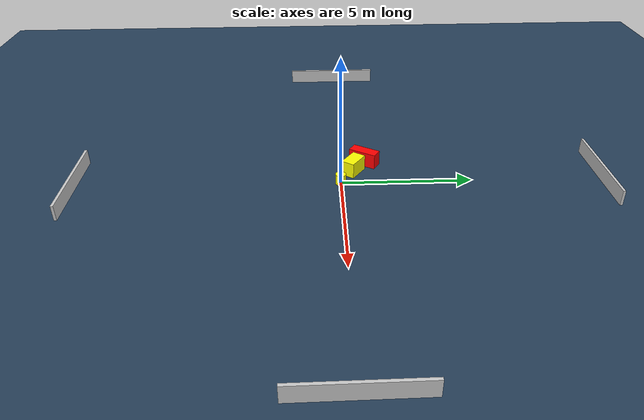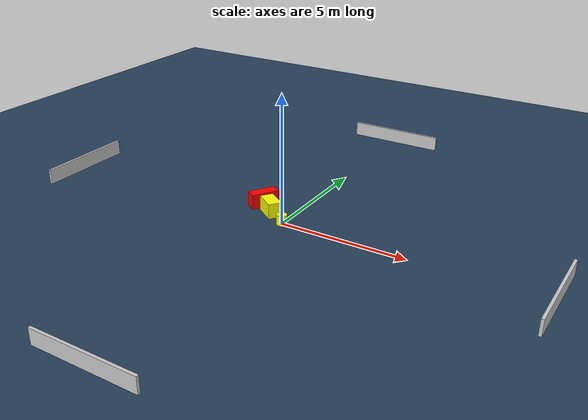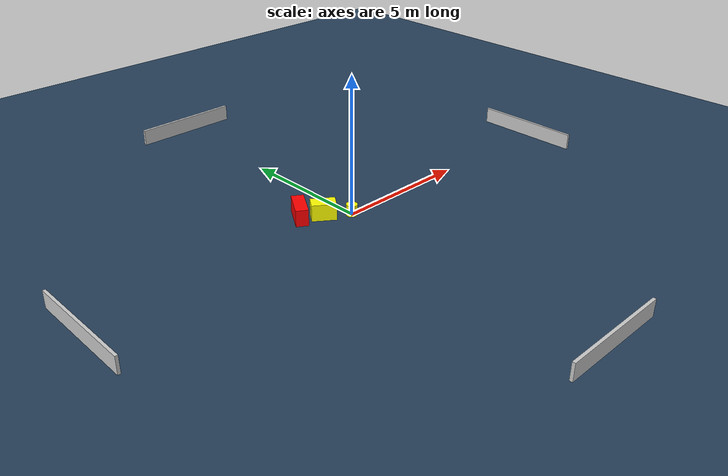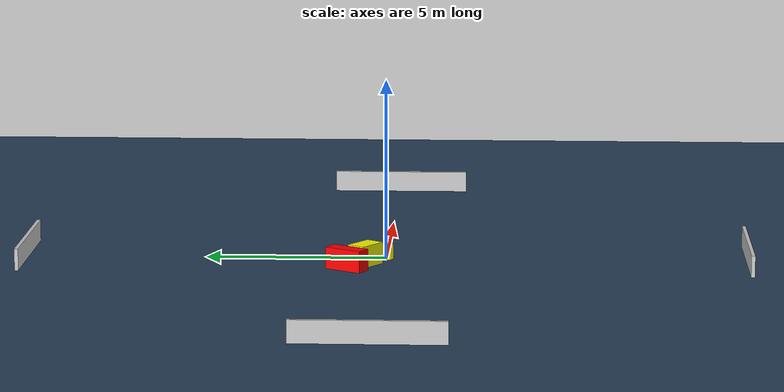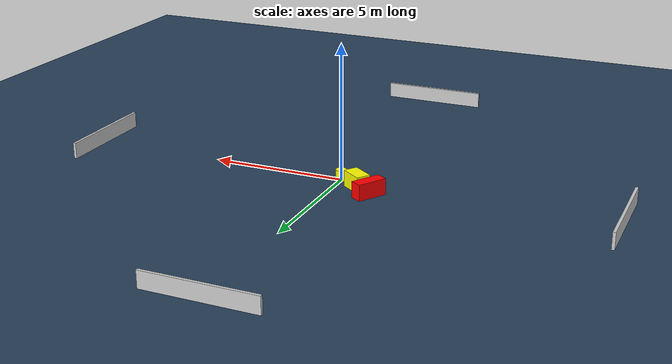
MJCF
<?xml version="1.0" ?>
<mujoco model="generated_environment">
  <option timestep="0.01" integrator="RK4" cone="elliptic"/>
  <default>
    <geom density="1"/>
  </default>
  <asset>
    <texture builtin="gradient" height="3072" name="skybox" rgb1="0.3 0.5 0.7" rgb2="0 0 0" type="skybox" width="512"/>
    <texture builtin="checker" height="300" name="groundplane" rgb1="0.2 0.3 0.4" rgb2="0.1 0.2 0.3" type="2d" width="300"/>
    <material name="groundplane" reflectance="0.2" texrepeat="5 5" texture="groundplane"/>
  </asset>
  <worldbody>
    <light dir="0 0 -1" directional="true" pos="0 0 1.5"/>
    <geom condim="3" friction="0.5 0.005 0.001" material="groundplane" name="floor" pos="0 0 0" size="0 0 0.05" type="plane"/>
    <body name="walls">
      <geom name="wall_1" condim="4" pos="-10.0 0.0 0.3" rgba="0.800000011920929 0.800000011920929 0.800000011920929 1.0" size="0.05 2.0 0.3" type="box"/>
      <geom name="wall_2" condim="4" pos="10.0 0.0 0.3" rgba="0.800000011920929 0.800000011920929 0.800000011920929 1.0" size="0.05 2.0 0.3" type="box"/>
      <geom name="wall_3" condim="4" pos="0.0 -10.0 0.3" rgba="0.800000011920929 0.800000011920929 0.800000011920929 1.0" size="2.0 0.05 0.3" type="box"/>
      <geom name="wall_4" condim="4" pos="0.0 10.0 0.3" rgba="0.800000011920929 0.800000011920929 0.800000011920929 1.0" size="2.0 0.05 0.3" type="box"/>
    </body>
    <body name="robot">
      <joint name="joint_x" type="slide" pos="0 0 0" axis="1 0 0"/>
      <joint name="joint_y" type="slide" pos="0 0 0" axis="0 1 0"/>
      <geom name="robot" type="cylinder" pos="0.0 0.0 0.2" size="0.2 0.2 0.0" mass="5.0" friction="1.0 0.005 0.0001" condim="4" rgba="1.0 1.0 0.0 1.0"/>
    </body>
    <body name="obstacle_1_movable">
      <geom name="obstacle_1_movable" condim="4" pos="-0.8232574906632316 0.5318810078079822 0.3" euler="0 0 324.88565236697696" friction="0.0 0.005 0.001" rgba="1.0 1.0 0.0 1.0" size="0.43016681833516235 0.26296110133012957 0.3" type="box" mass="0.1"/>
      <joint type="free"/>
    </body>
    <body name="obstacle_2_static">
      <geom name="obstacle_2_static" condim="4" pos="-1.4631668566710478 1.0055072910387475 0.3" euler="0 0 57.91911072406586" friction="0.0 0.005 0.001" rgba="1.0 0.0 0.0 1.0" size="0.5577085101884869 0.22011368165762568 0.3" type="box"/>
    </body>
  </worldbody>
  <actuator>
    <motor name="actuator_x" joint="joint_x" gear="1" ctrlrange="-1 1"/>
    <motor name="actuator_y" joint="joint_y" gear="1" ctrlrange="-1 1"/>
  </actuator>
</mujoco>
